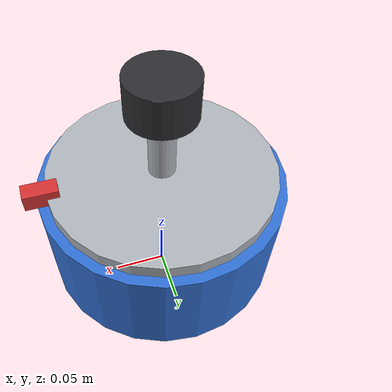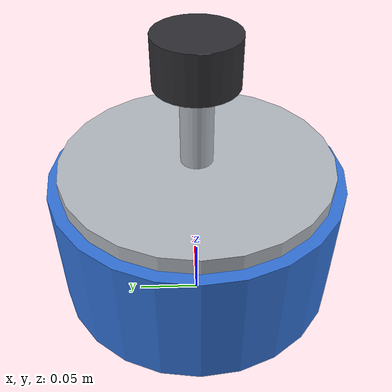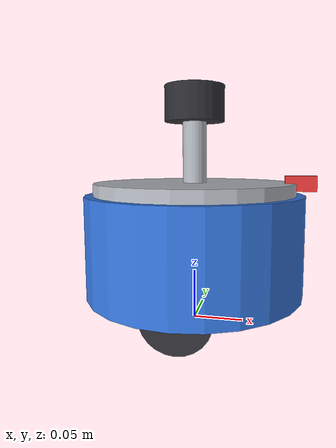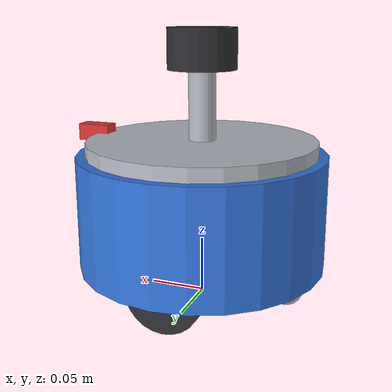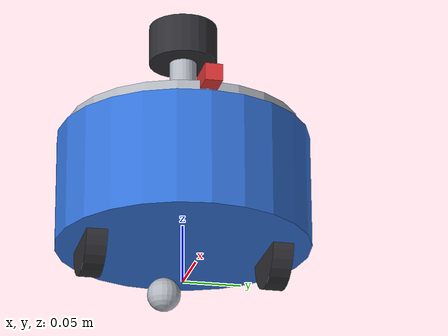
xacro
<?xml version="1.0"?>
<robot name="maze_bot" xmlns:xacro="http://www.ros.org/wiki/xacro">

  <!-- ==================== 属性 ==================== -->
  <xacro:property name="body_radius"  value="0.11"/>
  <xacro:property name="body_height"  value="0.1"/>
  <xacro:property name="body_z"       value="0.08"/>
  <xacro:property name="wheel_radius" value="0.033"/>
  <xacro:property name="wheel_width"  value="0.018"/>
  <xacro:property name="wheel_sep"    value="0.16"/>
  <xacro:property name="caster_radius" value="0.015"/>
  <xacro:property name="lidar_z"      value="0.22"/>
  <xacro:property name="lidar_radius" value="0.03"/>
  <xacro:property name="mass_body"    value="1.5"/>
  <xacro:property name="mass_wheel"   value="0.2"/>
  <xacro:property name="PI"           value="3.14159265359"/>

  <!-- ==================== 材质 ==================== -->
  <material name="blue">   <color rgba="0.20 0.45 0.85 1.0"/></material>
  <material name="dark">   <color rgba="0.18 0.18 0.20 1.0"/></material>
  <material name="silver"> <color rgba="0.70 0.72 0.75 1.0"/></material>
  <material name="red">    <color rgba="0.85 0.20 0.20 1.0"/></material>

  <!-- ==================== 惯量宏 ==================== -->
  <xacro:macro name="box_inertia" params="m x y z">
    <inertial>
      <mass value="${m}"/>
      <inertia ixx="${m*(y*y+z*z)/12}" ixy="0" ixz="0"
               iyy="${m*(x*x+z*z)/12}" iyz="0"
               izz="${m*(x*x+y*y)/12}"/>
    </inertial>
  </xacro:macro>

  <xacro:macro name="cyl_inertia" params="m r h">
    <inertial>
      <mass value="${m}"/>
      <inertia ixx="${m*(3*r*r+h*h)/12}" ixy="0" ixz="0"
               iyy="${m*(3*r*r+h*h)/12}" iyz="0"
               izz="${m*r*r/2}"/>
    </inertial>
  </xacro:macro>

  <!-- ==================== base_footprint（地面投影）==================== -->
  <link name="base_footprint"/>

  <joint name="base_footprint_joint" type="fixed">
    <parent link="base_footprint"/>
    <child link="base_link"/>
    <origin xyz="0 0 ${body_z}" rpy="0 0 0"/>
  </joint>

  <!-- ==================== base_link（车体主框架）==================== -->
  <link name="base_link">
    <visual>
      <origin xyz="0 0 0" rpy="0 0 0"/>
      <geometry>
        <cylinder radius="${body_radius}" length="${body_height}"/>
      </geometry>
      <material name="blue"/>
    </visual>
    <collision>
      <origin xyz="0 0 0" rpy="0 0 0"/>
      <geometry>
        <cylinder radius="${body_radius}" length="${body_height}"/>
      </geometry>
    </collision>
    <xacro:cyl_inertia m="${mass_body}" r="${body_radius}" h="${body_height}"/>
  </link>

  <!-- 车体顶盖（装饰 + 便于观察朝向）-->
  <link name="top_plate">
    <visual>
      <origin xyz="0 0 0" rpy="0 0 0"/>
      <geometry>
        <cylinder radius="${body_radius*0.92}" length="0.012"/>
      </geometry>
      <material name="silver"/>
    </visual>
    <collision>
      <origin xyz="0 0 0" rpy="0 0 0"/>
      <geometry>
        <cylinder radius="${body_radius*0.92}" length="0.012"/>
      </geometry>
    </collision>
    <xacro:cyl_inertia m="0.15" r="${body_radius*0.92}" h="0.012"/>
  </link>
  <joint name="top_plate_joint" type="fixed">
    <parent link="base_link"/>
    <child link="top_plate"/>
    <origin xyz="0 0 ${body_height/2 + 0.006}" rpy="0 0 0"/>
  </joint>

  <!-- 朝向标记（红色小块，指示车头方向 +X）-->
  <link name="nose_marker">
    <visual>
      <origin xyz="0 0 0" rpy="0 0 0"/>
      <geometry>
        <box size="0.03 0.015 0.015"/>
      </geometry>
      <material name="red"/>
    </visual>
    <inertial>
      <mass value="0.01"/>
      <inertia ixx="1e-6" ixy="0" ixz="0" iyy="1e-6" iyz="0" izz="1e-6"/>
    </inertial>
  </link>
  <joint name="nose_marker_joint" type="fixed">
    <parent link="base_link"/>
    <child link="nose_marker"/>
    <origin xyz="${body_radius*0.95} 0 ${body_height/2 + 0.012}" rpy="0 0 0"/>
  </joint>

  <!-- ==================== 左驱动轮 ==================== -->
  <link name="wheel_left_link">
    <visual>
      <origin xyz="0 0 0" rpy="${PI/2} 0 0"/>
      <geometry>
        <cylinder radius="${wheel_radius}" length="${wheel_width}"/>
      </geometry>
      <material name="dark"/>
    </visual>
    <collision>
      <origin xyz="0 0 0" rpy="${PI/2} 0 0"/>
      <geometry>
        <cylinder radius="${wheel_radius}" length="${wheel_width}"/>
      </geometry>
    </collision>
    <xacro:cyl_inertia m="${mass_wheel}" r="${wheel_radius}" h="${wheel_width}"/>
  </link>

  <joint name="wheel_left_joint" type="continuous">
    <parent link="base_link"/>
    <child link="wheel_left_link"/>
    <!-- 轮心高度 = 轮半径（离地），base_link 中心离地 body_z →
         相对坐标 = wheel_radius - body_z -->
    <origin xyz="0 ${wheel_sep/2} ${wheel_radius - body_z}" rpy="0 0 0"/>
    <axis xyz="0 1 0"/>
    <dynamics damping="0.5" friction="0.5"/>
  </joint>

  <!-- ==================== 右驱动轮 ==================== -->
  <link name="wheel_right_link">
    <visual>
      <origin xyz="0 0 0" rpy="${PI/2} 0 0"/>
      <geometry>
        <cylinder radius="${wheel_radius}" length="${wheel_width}"/>
      </geometry>
      <material name="dark"/>
    </visual>
    <collision>
      <origin xyz="0 0 0" rpy="${PI/2} 0 0"/>
      <geometry>
        <cylinder radius="${wheel_radius}" length="${wheel_width}"/>
      </geometry>
    </collision>
    <xacro:cyl_inertia m="${mass_wheel}" r="${wheel_radius}" h="${wheel_width}"/>
  </link>

  <joint name="wheel_right_joint" type="continuous">
    <parent link="base_link"/>
    <child link="wheel_right_link"/>
    <origin xyz="0 ${-wheel_sep/2} ${wheel_radius - body_z}" rpy="0 0 0"/>
    <axis xyz="0 1 0"/>
    <dynamics damping="0.5" friction="0.5"/>
  </joint>

  <!-- ==================== 万向轮（前部支撑）==================== -->
  <link name="caster_link">
    <visual>
      <origin xyz="0 0 0" rpy="0 0 0"/>
      <geometry>
        <sphere radius="${caster_radius}"/>
      </geometry>
      <material name="silver"/>
    </visual>
    <collision>
      <origin xyz="0 0 0" rpy="0 0 0"/>
      <geometry>
        <sphere radius="${caster_radius}"/>
      </geometry>
    </collision>
    <inertial>
      <mass value="0.05"/>
      <inertia ixx="1e-5" ixy="0" ixz="0" iyy="1e-5" iyz="0" izz="1e-5"/>
    </inertial>
  </link>

  <joint name="caster_joint" type="fixed">
    <parent link="base_link"/>
    <child link="caster_link"/>
    <origin xyz="${-body_radius*0.72} 0 ${caster_radius - body_z}" rpy="0 0 0"/>
  </joint>

  <!-- ==================== 2D 激光雷达 ==================== -->
  <link name="laser_frame">
    <visual>
      <origin xyz="0 0 0" rpy="0 0 0"/>
      <geometry>
        <cylinder radius="${lidar_radius}" length="0.035"/>
      </geometry>
      <material name="dark"/>
    </visual>
    <collision>
      <origin xyz="0 0 0" rpy="0 0 0"/>
      <geometry>
        <cylinder radius="${lidar_radius}" length="0.035"/>
      </geometry>
    </collision>
    <xacro:cyl_inertia m="0.12" r="${lidar_radius}" h="0.035"/>
  </link>

  <joint name="laser_joint" type="fixed">
    <parent link="base_link"/>
    <child link="laser_frame"/>
    <!-- 雷达世界高度应为 lidar_z，相对 base_link 中心则为 lidar_z - body_z -->
    <origin xyz="0 0 ${lidar_z - body_z}" rpy="0 0 0"/>
  </joint>

  <!-- 雷达支架（从车体顶面伸到雷达下方）-->
  <link name="lidar_mast">
    <visual>
      <origin xyz="0 0 0" rpy="0 0 0"/>
      <geometry>
        <cylinder radius="0.012" length="${lidar_z - body_z - body_height/2}"/>
      </geometry>
      <material name="silver"/>
    </visual>
    <inertial>
      <mass value="0.02"/>
      <inertia ixx="1e-6" ixy="0" ixz="0" iyy="1e-6" iyz="0" izz="1e-6"/>
    </inertial>
  </link>
  <joint name="lidar_mast_joint" type="fixed">
    <parent link="base_link"/>
    <child link="lidar_mast"/>
    <!-- 支架中心在「车体顶面」与「雷达底面」之间 -->
    <origin xyz="0 0 ${(body_height/2 + lidar_z - body_z)/2}" rpy="0 0 0"/>
  </joint>

  <!-- ==================== Gazebo 差速驱动插件 ==================== -->
  <gazebo>
    <plugin name="diff_drive" filename="libgazebo_ros_diff_drive.so">
      <ros>
        <namespace>/</namespace>
      </ros>
      <update_rate>50</update_rate>

      <left_joint>wheel_left_joint</left_joint>
      <right_joint>wheel_right_joint</right_joint>

      <wheel_separation>${wheel_sep}</wheel_separation>
      <wheel_diameter>${wheel_radius*2}</wheel_diameter>

      <max_wheel_torque>12.0</max_wheel_torque>
      <!-- max_wheel_acceleration: 0 = 不限制。
           原先设 1.5 rad/s² 会让起步极迟钝（实测发 0.3 m/s 走 6s 只前进
           1.22m，平均 0.2 m/s），无谓地拖长建图时间。
           1.5kg 小车 + 12Nm 扭矩，不限制也不会失稳。 -->
      <max_wheel_acceleration>0.0</max_wheel_acceleration>

      <command_topic>cmd_vel</command_topic>
      <odometry_topic>odom</odometry_topic>
      <odometry_frame>odom</odometry_frame>
      <robot_base_frame>base_footprint</robot_base_frame>

      <publish_odom>true</publish_odom>
      <publish_odom_tf>true</publish_odom_tf>
      <publish_wheel_tf>false</publish_wheel_tf>
    </plugin>
  </gazebo>

  <gazebo reference="laser_frame">
    <sensor type="ray" name="lidar">
      <pose>0 0 0 0 0 0</pose>
      <visualize>false</visualize>
      <update_rate>12</update_rate>
      <ray>
        <scan>
          <horizontal>
            <samples>180</samples>
            <resolution>1</resolution>
            <min_angle>-3.14159265</min_angle>
            <max_angle>3.14159265</max_angle>
          </horizontal>
        </scan>
        <range>
          <min>0.12</min>
          <max>8.0</max>
          <resolution>0.01</resolution>
        </range>
        <noise>
          <type>gaussian</type>
          <mean>0.0</mean>
          <stddev>0.005</stddev>
        </noise>
      </ray>
      <plugin name="laser_controller" filename="libgazebo_ros_ray_sensor.so">
        <ros>
          <remapping>~/out:=scan</remapping>
        </ros>
        <output_type>sensor_msgs/LaserScan</output_type>
        <frame_name>laser_frame</frame_name>
      </plugin>
    </sensor>
  </gazebo>

  <!-- ==================== 材质绑定 ==================== -->
  <gazebo reference="base_link">  <material>Gazebo/Blue</material>  </gazebo>
  <gazebo reference="top_plate">  <material>Gazebo/Grey</material>  </gazebo>
  <gazebo reference="wheel_left_link">  <material>Gazebo/Black</material>  </gazebo>
  <gazebo reference="wheel_right_link"> <material>Gazebo/Black</material>  </gazebo>
  <gazebo reference="caster_link">      <material>Gazebo/Grey</material>   </gazebo>
  <gazebo reference="laser_frame">      <material>Gazebo/Black</material>  </gazebo>

  <!-- 轮子摩擦：足够抓地但不打滑 -->
  <gazebo reference="wheel_left_link">
    <mu1>0.9</mu1><mu2>0.9</mu2>
    <kp>1000000.0</kp><kd>100.0</kd>
    <minDepth>0.001</minDepth>
    <maxVel>0.1</maxVel>
  </gazebo>
  <gazebo reference="wheel_right_link">
    <mu1>0.9</mu1><mu2>0.9</mu2>
    <kp>1000000.0</kp><kd>100.0</kd>
    <minDepth>0.001</minDepth>
    <maxVel>0.1</maxVel>
  </gazebo>
  <!-- 万向轮：低摩擦便于转向 -->
  <gazebo reference="caster_link">
    <mu1>0.0</mu1><mu2>0.0</mu2>
    <kp>1000000.0</kp><kd>100.0</kd>
  </gazebo>
  <!-- 车体：低摩擦避免蹭墙卡住 -->
  <gazebo reference="base_link">
    <mu1>0.1</mu1><mu2>0.1</mu2>
  </gazebo>

</robot>
